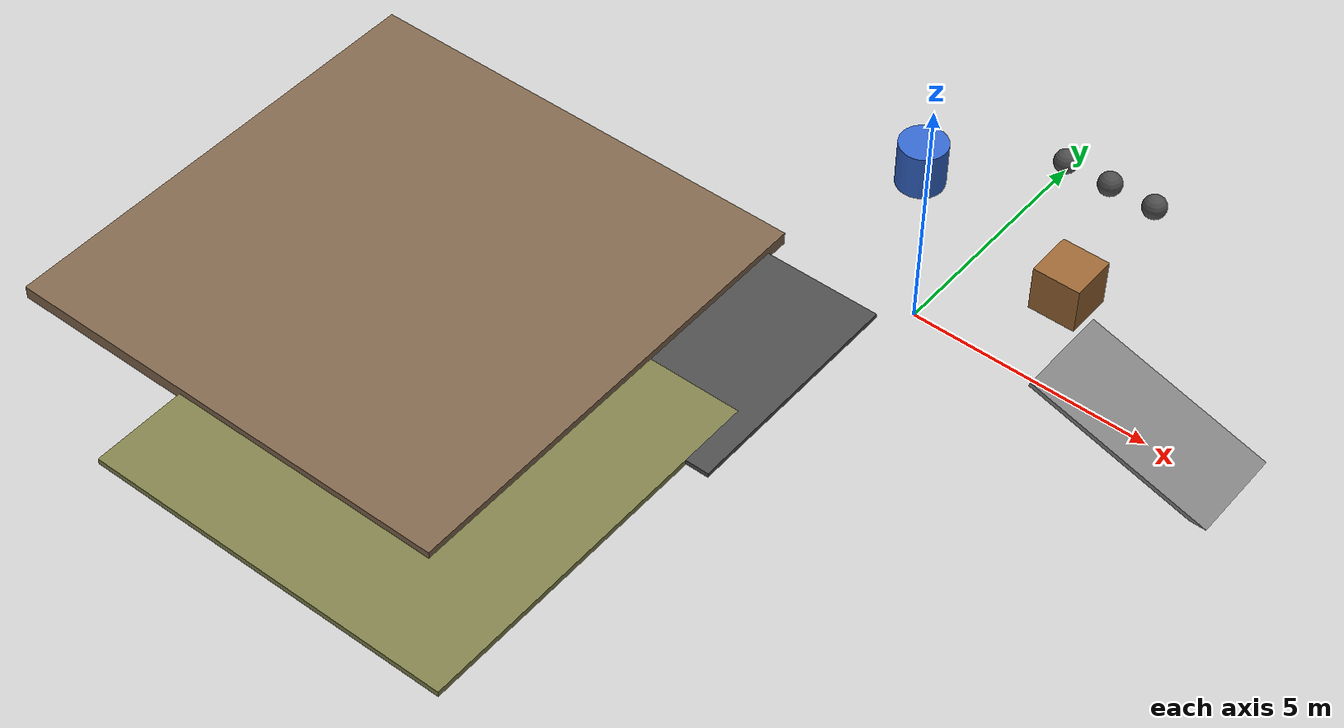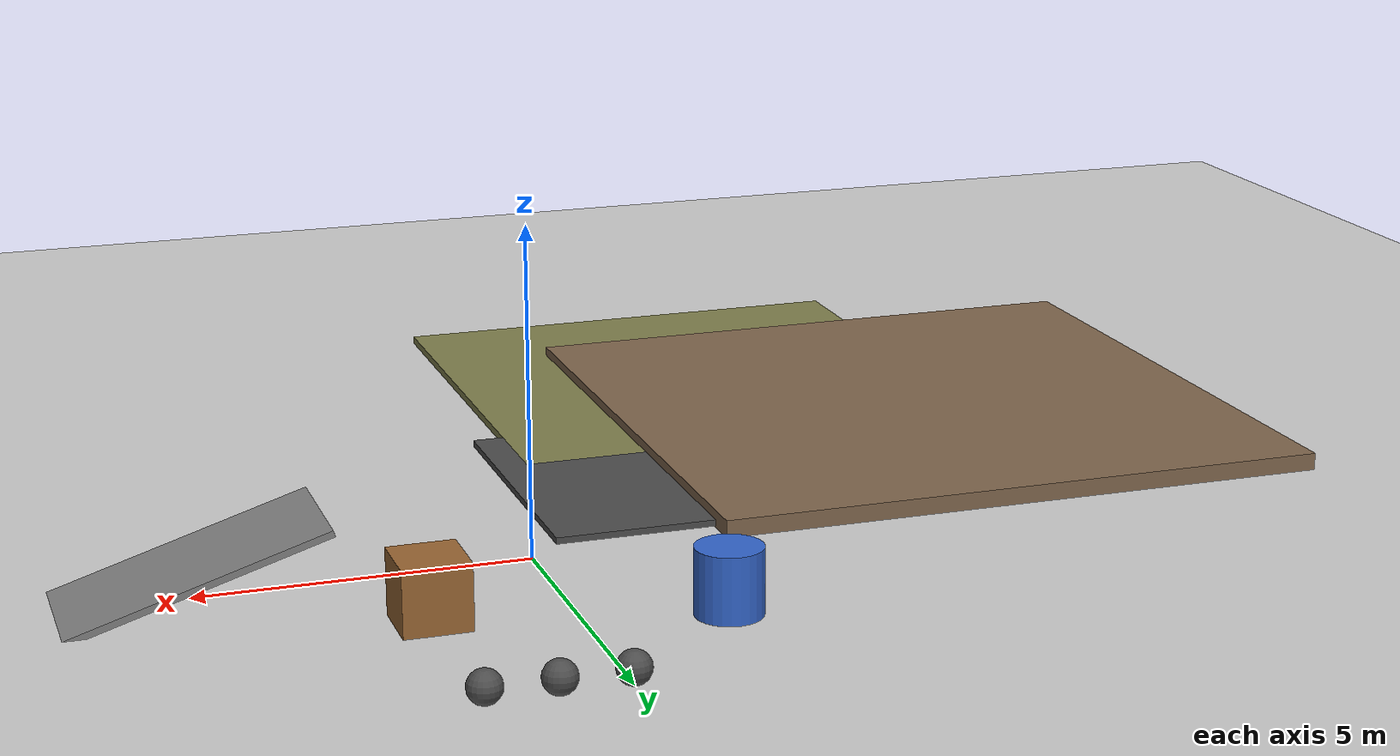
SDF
<?xml version="1.0" ?>
<sdf version="1.8">
  <world name="tracked_robot_world">
    <!-- Physics -->
    <physics name="1ms" type="ignored">
      <max_step_size>0.001</max_step_size>
      <real_time_factor>1.0</real_time_factor>
      <real_time_update_rate>1000.0</real_time_update_rate>
    </physics>

    <!-- Scene -->
    <scene>
      <ambient>0.4 0.4 0.4 1.0</ambient>
      <background>0.7 0.7 0.7 1.0</background>
      <shadows>true</shadows>
    </scene>

    <!-- Ambient light -->
    <light type="directional" name="sun">
      <cast_shadows>true</cast_shadows>
      <pose>0 0 10 0 0 0</pose>
      <diffuse>0.8 0.8 0.8 1</diffuse>
      <specular>0.2 0.2 0.2 1</specular>
      <direction>-0.5 0.1 -0.9</direction>
    </light>

    <!-- A ground plane -->
    <model name="ground_plane">
      <static>true</static>
      <link name="link">
        <collision name="collision">
          <geometry>
            <plane>
              <normal>0 0 1</normal>
              <size>100 100</size>
            </plane>
          </geometry>
        </collision>
        <visual name="visual">
          <geometry>
            <plane>
              <normal>0 0 1</normal>
              <size>100 100</size>
            </plane>
          </geometry>
          <material>
            <ambient>0.8 0.8 0.8 1</ambient>
            <diffuse>0.8 0.8 0.8 1</diffuse>
            <specular>0.8 0.8 0.8 1</specular>
          </material>
        </visual>
      </link>
    </model>

    <!-- Environment with some obstacles -->
    <model name="box1">
      <pose>2 2 0.5 0 0 0</pose>
      <link name="link">
        <collision name="collision">
          <geometry>
            <box>
              <size>1 1 1</size>
            </box>
          </geometry>
        </collision>
        <visual name="visual">
          <geometry>
            <box>
              <size>1 1 1</size>
            </box>
          </geometry>
          <material>
            <ambient>0.6 0.4 0.2 1</ambient>
            <diffuse>0.6 0.4 0.2 1</diffuse>
            <specular>0.6 0.4 0.2 1</specular>
          </material>
        </visual>
      </link>
      <static>true</static>
    </model>

    <model name="cylinder1">
      <pose>-2 3 0.5 0 0 0</pose>
      <link name="link">
        <collision name="collision">
          <geometry>
            <cylinder>
              <radius>0.5</radius>
              <length>1</length>
            </cylinder>
          </geometry>
        </collision>
        <visual name="visual">
          <geometry>
            <cylinder>
              <radius>0.5</radius>
              <length>1</length>
            </cylinder>
          </geometry>
          <material>
            <ambient>0.2 0.4 0.8 1</ambient>
            <diffuse>0.2 0.4 0.8 1</diffuse>
            <specular>0.2 0.4 0.8 1</specular>
          </material>
        </visual>
      </link>
      <static>true</static>
    </model>

    <!-- Ramp for testing tracked vehicle -->
    <model name="ramp">
      <pose>5 0 0.5 0 0.3 0</pose>
      <link name="link">
        <collision name="collision">
          <geometry>
            <box>
              <size>4 2 0.1</size>
            </box>
          </geometry>
        </collision>
        <visual name="visual">
          <geometry>
            <box>
              <size>4 2 0.1</size>
            </box>
          </geometry>
          <material>
            <ambient>0.5 0.5 0.5 1</ambient>
            <diffuse>0.5 0.5 0.5 1</diffuse>
            <specular>0.5 0.5 0.5 1</specular>
          </material>
        </visual>
      </link>
      <static>true</static>
    </model>

    <!-- Curved path (using box instead of mesh since mesh file is missing) -->
    <model name="curved_path">
      <pose>-3 -3 0.05 0 0 0</pose>
      <link name="link">
        <collision name="collision">
          <geometry>
            <box>
              <size>5 5 0.1</size>
            </box>
          </geometry>
        </collision>
        <visual name="visual">
          <geometry>
            <box>
              <size>5 5 0.1</size>
            </box>
          </geometry>
          <material>
            <ambient>0.3 0.3 0.3 1</ambient>
            <diffuse>0.3 0.3 0.3 1</diffuse>
            <specular>0.3 0.3 0.3 1</specular>
          </material>
        </visual>
      </link>
      <static>true</static>
    </model>

    <!-- Small hills for track testing (replaced heightmap with simple box) -->
    <model name="hills">
      <pose>-8 -5 0 0 0 0</pose>
      <link name="link">
        <collision name="collision">
          <geometry>
            <box>
              <size>10 10 0.5</size>
            </box>
          </geometry>
        </collision>
        <visual name="visual">
          <geometry>
            <box>
              <size>10 10 0.5</size>
            </box>
          </geometry>
          <material>
            <ambient>0.5 0.4 0.3 1</ambient>
            <diffuse>0.5 0.4 0.3 1</diffuse>
            <specular>0.1 0.1 0.1 1</specular>
          </material>
        </visual>
      </link>
      <static>true</static>
    </model>

    <!-- Rough terrain area -->
    <model name="rough_terrain">
      <pose>-5 -8 0 0 0 0</pose>
      <link name="link">
        <collision name="collision">
          <geometry>
            <box>
              <size>8 8 0.2</size>
            </box>
          </geometry>
          <surface>
            <friction>
              <ode>
                <mu>100</mu>
                <mu2>50</mu2>
              </ode>
            </friction>
          </surface>
        </collision>
        <visual name="visual">
          <geometry>
            <box>
              <size>8 8 0.2</size>
            </box>
          </geometry>
          <material>
            <ambient>0.5 0.5 0.3 1</ambient>
            <diffuse>0.5 0.5 0.3 1</diffuse>
            <specular>0.1 0.1 0.1 1</specular>
          </material>
        </visual>
      </link>
      <static>true</static>
    </model>

    <!-- Multiple small obstacles -->
    <model name="obstacles">
      <static>true</static>
      <link name="link">
        <visual name="visual1">
          <pose>0 5 0.25 0 0 0</pose>
          <geometry>
            <sphere>
              <radius>0.25</radius>
            </sphere>
          </geometry>
          <material>
            <ambient>0.3 0.3 0.3 1</ambient>
            <diffuse>0.3 0.3 0.3 1</diffuse>
          </material>
        </visual>
        <collision name="collision1">
          <pose>0 5 0.25 0 0 0</pose>
          <geometry>
            <sphere>
              <radius>0.25</radius>
            </sphere>
          </geometry>
        </collision>

        <visual name="visual2">
          <pose>1 5 0.25 0 0 0</pose>
          <geometry>
            <sphere>
              <radius>0.25</radius>
            </sphere>
          </geometry>
          <material>
            <ambient>0.3 0.3 0.3 1</ambient>
            <diffuse>0.3 0.3 0.3 1</diffuse>
          </material>
        </visual>
        <collision name="collision2">
          <pose>1 5 0.25 0 0 0</pose>
          <geometry>
            <sphere>
              <radius>0.25</radius>
            </sphere>
          </geometry>
        </collision>

        <visual name="visual3">
          <pose>2 5 0.25 0 0 0</pose>
          <geometry>
            <sphere>
              <radius>0.25</radius>
            </sphere>
          </geometry>
          <material>
            <ambient>0.3 0.3 0.3 1</ambient>
            <diffuse>0.3 0.3 0.3 1</diffuse>
          </material>
        </visual>
        <collision name="collision3">
          <pose>2 5 0.25 0 0 0</pose>
          <geometry>
            <sphere>
              <radius>0.25</radius>
            </sphere>
          </geometry>
        </collision>
      </link>
    </model>

    <!-- Required plugins for Gazebo Garden compatibility -->
    <plugin
      filename="libignition-gazebo-physics-system.so"
      name="ignition::gazebo::systems::Physics">
    </plugin>
    <plugin
      filename="libignition-gazebo-user-commands-system.so"
      name="ignition::gazebo::systems::UserCommands">
    </plugin>
    <plugin
      filename="libignition-gazebo-scene-broadcaster-system.so"
      name="ignition::gazebo::systems::SceneBroadcaster">
    </plugin>
    <plugin
      filename="libignition-gazebo-sensors-system.so"
      name="ignition::gazebo::systems::Sensors">
      <render_engine>ogre2</render_engine>
    </plugin>
  </world>
</sdf>
